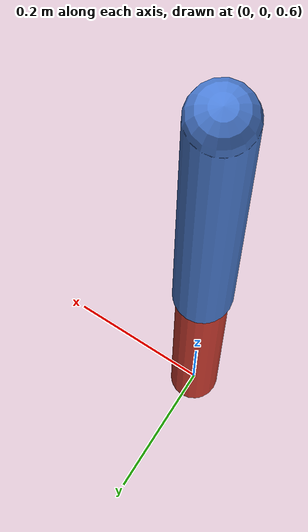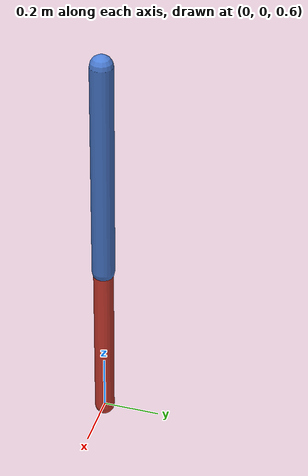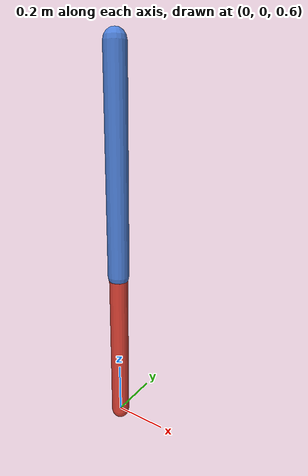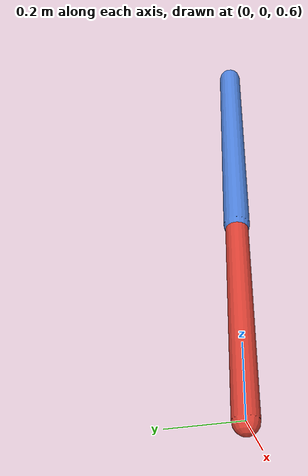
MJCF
<mujoco model="mjcf_double_pendulum">
    <compiler angle="radian"/>
    <option gravity="0 0 -9.81" timestep="0.002" integrator="RK4"/>

    <worldbody>
        <!-- Pivot at Z=2, links hang down along -Z -->
        <body name="upper" pos="0 0 2">
            <joint name="joint1" type="hinge" axis="0 1 0"
                   damping="1.2"/>
            <geom name="upper_geom" type="capsule" fromto="0 0 0 0 0 -0.8"
                  size="0.04" mass="1.0" rgba="0.3 0.5 0.85 1"/>

            <body name="lower" pos="0 0 -0.8">
                <joint name="joint2" type="hinge" axis="0 1 0"
                       damping="0.3"/>
                <geom name="lower_geom" type="capsule" fromto="0 0 0 0 0 -0.6"
                      size="0.035" mass="0.5" rgba="0.85 0.25 0.2 1"/>
            </body>
        </body>
    </worldbody>
</mujoco>
